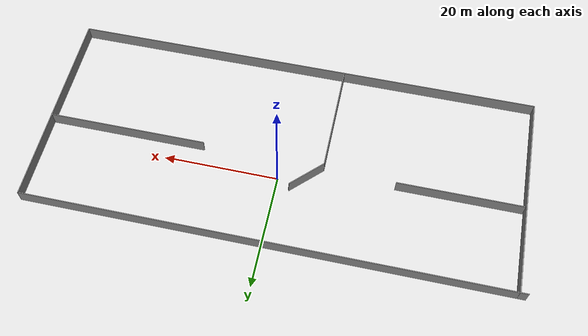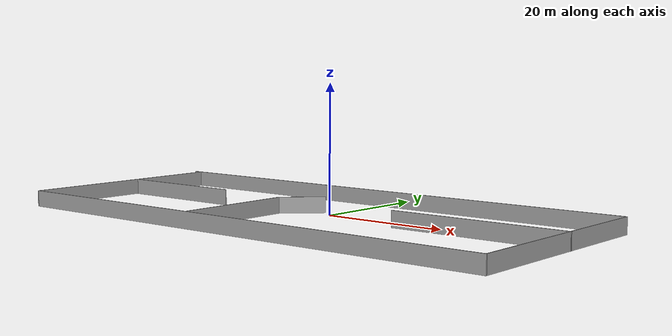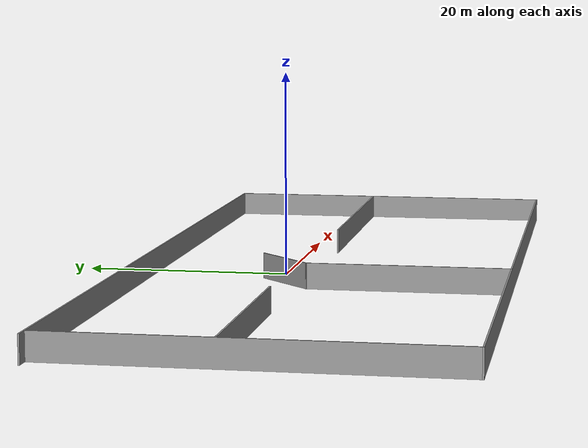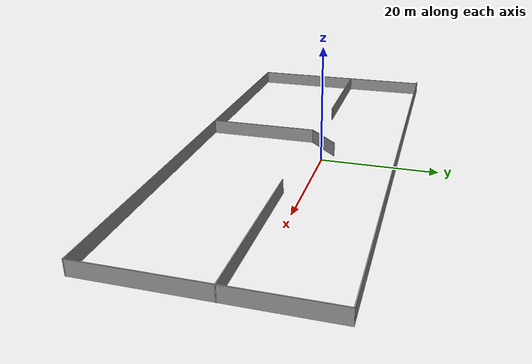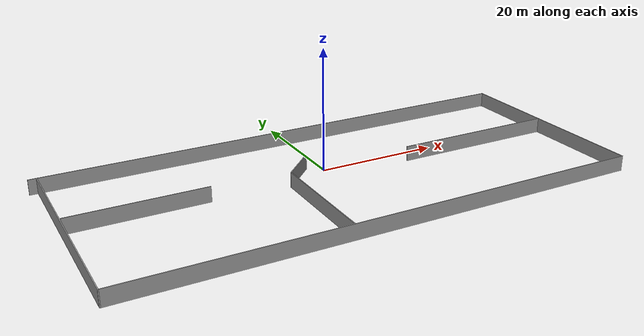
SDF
<?xml version='1.0'?>
<sdf version='1.7'>
  <model name='micropolis'>
    <pose>-0.701731 -4.87259 0 0 -0 0</pose>
    <link name='Wall_10'>
      <collision name='Wall_10_Collision'>
        <geometry>
          <box>
            <size>35.75 0.15 2.5</size>
          </box>
        </geometry>
        <pose>0 0 1.25 0 -0 0</pose>
      </collision>
      <visual name='Wall_10_Visual'>
        <pose>0 0 1.25 0 -0 0</pose>
        <geometry>
          <box>
            <size>35.75 0.15 2.5</size>
          </box>
        </geometry>
        <material>
          <script>
            <uri>file://media/materials/scripts/gazebo.material</uri>
            <name>Gazebo/Grey</name>
          </script>
          <ambient>1 1 1 1</ambient>
        </material>
        <meta>
          <layer>0</layer>
        </meta>
      </visual>
      <pose>-40.8244 -0 0 0 -0 1.5708</pose>
    </link>
    <link name='Wall_12'>
      <collision name='Wall_12_Collision'>
        <geometry>
          <box>
            <size>27.75 0.15 2.5</size>
          </box>
        </geometry>
        <pose>0 0 1.25 0 -0 0</pose>
      </collision>
      <visual name='Wall_12_Visual'>
        <pose>0 0 1.25 0 -0 0</pose>
        <geometry>
          <box>
            <size>27.75 0.15 2.5</size>
          </box>
        </geometry>
        <material>
          <script>
            <uri>file://media/materials/scripts/gazebo.material</uri>
            <name>Gazebo/Grey</name>
          </script>
          <ambient>1 1 1 1</ambient>
        </material>
        <meta>
          <layer>0</layer>
        </meta>
      </visual>
      <pose>28.2744 1.86674 0 0 -0 3.14159</pose>
    </link>
    <link name='Wall_14'>
      <collision name='Wall_14_Collision'>
        <geometry>
          <box>
            <size>19.5 0.15 2.5</size>
          </box>
        </geometry>
        <pose>0 0 1.25 0 -0 0</pose>
      </collision>
      <visual name='Wall_14_Visual'>
        <pose>0 0 1.25 0 -0 0</pose>
        <geometry>
          <box>
            <size>19.5 0.15 2.5</size>
          </box>
        </geometry>
        <material>
          <script>
            <uri>file://media/materials/scripts/gazebo.material</uri>
            <name>Gazebo/Grey</name>
          </script>
          <ambient>1 1 1 1</ambient>
        </material>
        <meta>
          <layer>0</layer>
        </meta>
      </visual>
      <pose>-6.67877 -8.10927 0 0 -0 1.5708</pose>
    </link>
    <link name='Wall_15'>
      <collision name='Wall_15_Collision'>
        <geometry>
          <box>
            <size>7.25 0.15 2.5</size>
          </box>
        </geometry>
        <pose>0 0 1.25 0 -0 0</pose>
      </collision>
      <visual name='Wall_15_Visual'>
        <pose>0 0 1.25 0 -0 0</pose>
        <geometry>
          <box>
            <size>7.25 0.15 2.5</size>
          </box>
        </geometry>
        <material>
          <script>
            <uri>file://media/materials/scripts/gazebo.material</uri>
            <name>Gazebo/Grey</name>
          </script>
          <ambient>1 1 1 1</ambient>
        </material>
        <meta>
          <layer>0</layer>
        </meta>
      </visual>
      <pose>-4.16854 4.07597 0 0 -0 0.785398</pose>
    </link>
    <link name='Wall_17'>
      <collision name='Wall_17_Collision'>
        <geometry>
          <box>
            <size>21.5 0.15 2.5</size>
          </box>
        </geometry>
        <pose>0 0 1.25 0 -0 0</pose>
      </collision>
      <visual name='Wall_17_Visual'>
        <pose>0 0 1.25 0 -0 0</pose>
        <geometry>
          <box>
            <size>21.5 0.15 2.5</size>
          </box>
        </geometry>
        <material>
          <script>
            <uri>file://media/materials/scripts/gazebo.material</uri>
            <name>Gazebo/Grey</name>
          </script>
          <ambient>1 1 1 1</ambient>
        </material>
        <meta>
          <layer>0</layer>
        </meta>
      </visual>
      <pose>-29.8784 2.61535 0 0 -0 0</pose>
    </link>
    <link name='Wall_7'>
      <collision name='Wall_7_Collision'>
        <geometry>
          <box>
            <size>84.25 0.15 2.5</size>
          </box>
        </geometry>
        <pose>0 0 1.25 0 -0 0</pose>
      </collision>
      <visual name='Wall_7_Visual'>
        <pose>0 0 1.25 0 -0 0</pose>
        <geometry>
          <box>
            <size>84.25 0.15 2.5</size>
          </box>
        </geometry>
        <material>
          <script>
            <uri>file://media/materials/scripts/gazebo.material</uri>
            <name>Gazebo/Grey</name>
          </script>
          <ambient>1 1 1 1</ambient>
        </material>
        <meta>
          <layer>0</layer>
        </meta>
      </visual>
      <pose>-0.024439 17.8 0 0 -0 0</pose>
    </link>
    <link name='Wall_8'>
      <collision name='Wall_8_Collision'>
        <geometry>
          <box>
            <size>35.75 0.15 2.5</size>
          </box>
        </geometry>
        <pose>0 0 1.25 0 -0 0</pose>
      </collision>
      <visual name='Wall_8_Visual'>
        <pose>0 0 1.25 0 -0 0</pose>
        <geometry>
          <box>
            <size>35.75 0.15 2.5</size>
          </box>
        </geometry>
        <material>
          <script>
            <uri>file://media/materials/scripts/gazebo.material</uri>
            <name>Gazebo/Grey</name>
          </script>
          <ambient>1 1 1 1</ambient>
        </material>
        <meta>
          <layer>0</layer>
        </meta>
      </visual>
      <pose>42.0256 -0 0 0 -0 -1.5708</pose>
    </link>
    <link name='Wall_9'>
      <collision name='Wall_9_Collision'>
        <geometry>
          <box>
            <size>83 0.15 2.5</size>
          </box>
        </geometry>
        <pose>0 0 1.25 0 -0 0</pose>
      </collision>
      <visual name='Wall_9_Visual'>
        <pose>0 0 1.25 0 -0 0</pose>
        <geometry>
          <box>
            <size>83 0.15 2.5</size>
          </box>
        </geometry>
        <material>
          <script>
            <uri>file://media/materials/scripts/gazebo.material</uri>
            <name>Gazebo/Grey</name>
          </script>
          <ambient>1 1 1 1</ambient>
        </material>
        <meta>
          <layer>0</layer>
        </meta>
      </visual>
      <pose>0.600561 -17.8 0 0 -0 3.14159</pose>
    </link>
    <static>1</static>
  </model>
</sdf>
